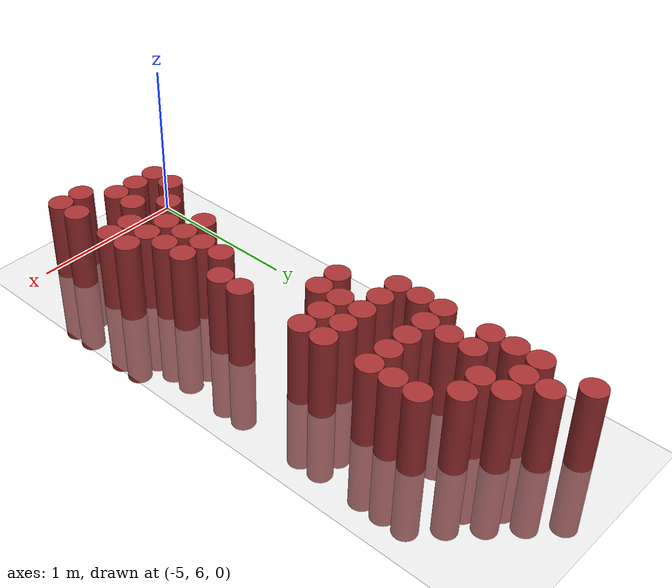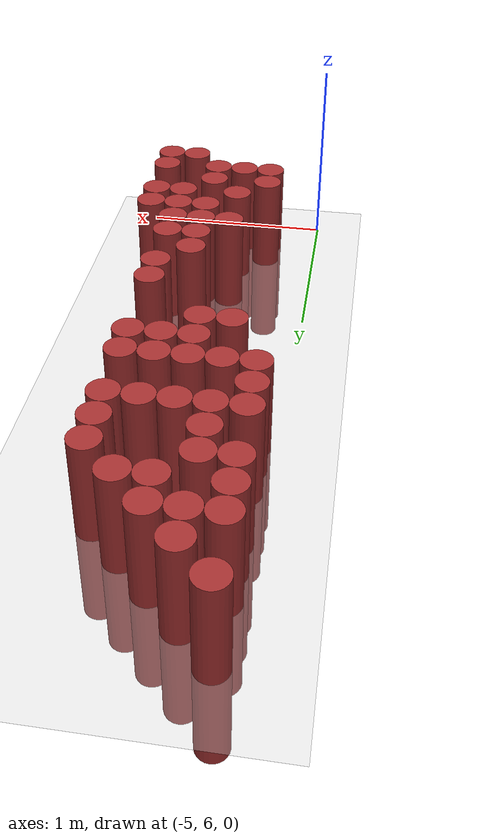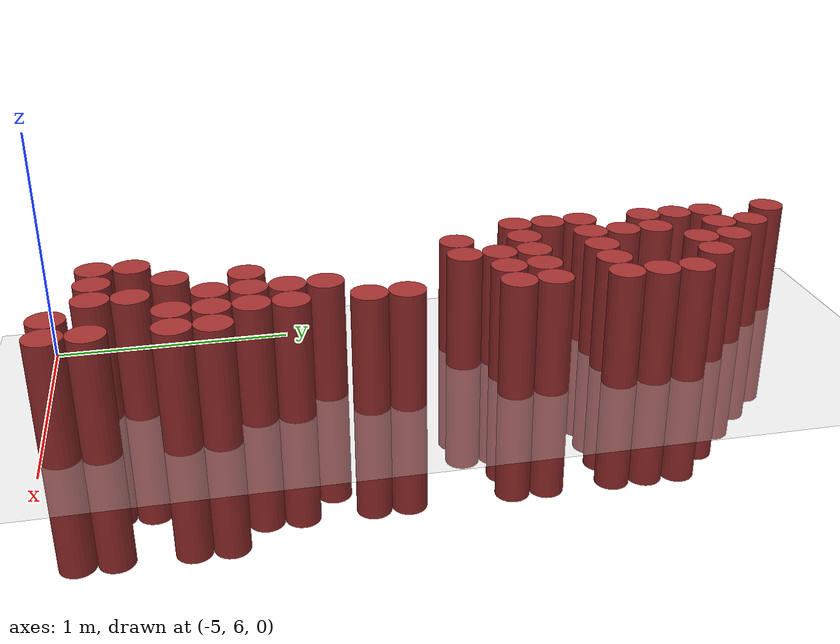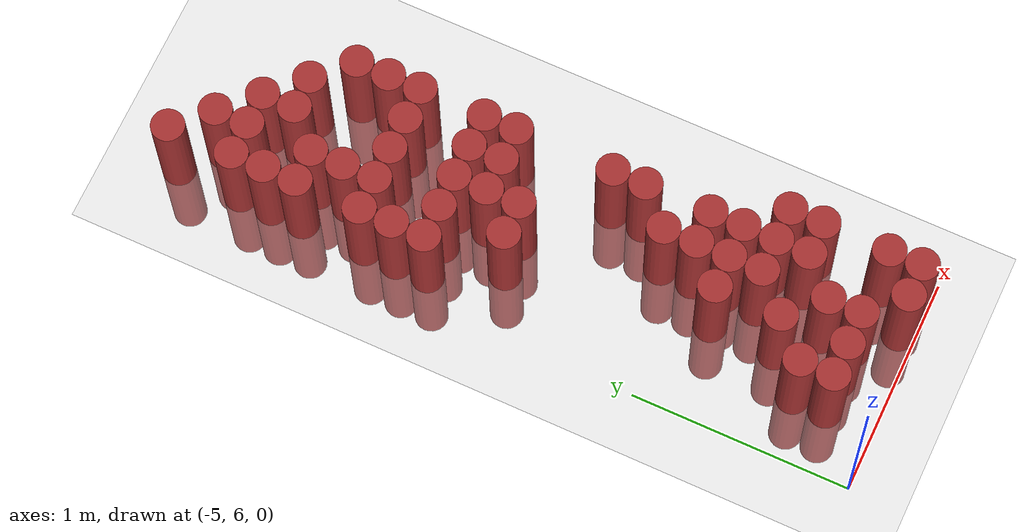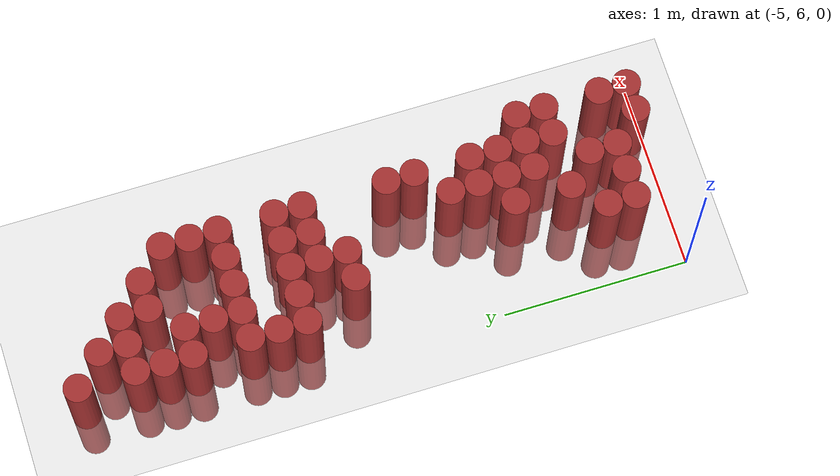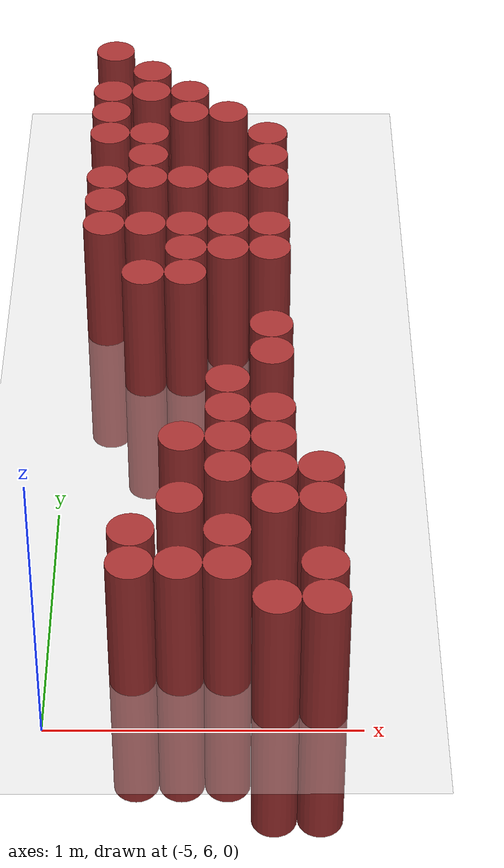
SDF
<sdf version="1.6">
 <world name="default">
  <model name="ground_plane">
   <static>1</static>
   <link name="link">
    <collision name="collision">
     <geometry><plane><normal>0 0 1</normal><size>100 100</size></plane></geometry>
     <surface><friction><ode><mu>100</mu><mu2>50</mu2></ode></friction></surface>
    </collision>
    <visual name="visual">
     <cast_shadows>0</cast_shadows>
     <geometry><plane><normal>0 0 1</normal><size>100 100</size></plane></geometry>
     <material>
      <script><uri>file://media/materials/scripts/gazebo.material</uri><name>Gazebo/Grey</name></script>
     </material>
    </visual>
   </link>
  </model>
  <model name="unit_cylinder_259">
   <static>1</static>
   <pose>-4.875000 8.025000 0.000000 0.000000 0.000000 0.000000</pose>
   <link name="link">
    <inertial>
     <mass>1</mass>
     <inertia><ixx>0.145833</ixx><ixy>0</ixy><ixz>0</ixz><iyy>0.145833</iyy><iyz>0</iyz><izz>0.125</izz></inertia>
    </inertial>
    <collision name="collision">
     <geometry><cylinder><radius>0.075000</radius><length>1</length></cylinder></geometry>
    </collision>
    <visual name="visual">
     <geometry><cylinder><radius>0.075000</radius><length>1</length></cylinder></geometry>
     <material>
      <ambient>0.648000 0.192000 0.192000 1</ambient>
      <diffuse>0.648000 0.192000 0.192000 1</diffuse>
     </material>
     <material>
      <script><name>Gazebo/Grey</name><uri>file://media/materials/scripts/gazebo.material</uri></script>
     </material>
    </visual>
   </link>
  </model>
  <model name="unit_cylinder_260">
   <static>1</static>
   <pose>-4.875000 8.175000 0.000000 0.000000 0.000000 0.000000</pose>
   <link name="link">
    <inertial>
     <mass>1</mass>
     <inertia><ixx>0.145833</ixx><ixy>0</ixy><ixz>0</ixz><iyy>0.145833</iyy><iyz>0</iyz><izz>0.125</izz></inertia>
    </inertial>
    <collision name="collision">
     <geometry><cylinder><radius>0.075000</radius><length>1</length></cylinder></geometry>
    </collision>
    <visual name="visual">
     <geometry><cylinder><radius>0.075000</radius><length>1</length></cylinder></geometry>
     <material>
      <ambient>0.648000 0.192000 0.192000 1</ambient>
      <diffuse>0.648000 0.192000 0.192000 1</diffuse>
     </material>
     <material>
      <script><name>Gazebo/Grey</name><uri>file://media/materials/scripts/gazebo.material</uri></script>
     </material>
    </visual>
   </link>
  </model>
  <model name="unit_cylinder_261">
   <static>1</static>
   <pose>-4.875000 8.325000 0.000000 0.000000 0.000000 0.000000</pose>
   <link name="link">
    <inertial>
     <mass>1</mass>
     <inertia><ixx>0.145833</ixx><ixy>0</ixy><ixz>0</ixz><iyy>0.145833</iyy><iyz>0</iyz><izz>0.125</izz></inertia>
    </inertial>
    <collision name="collision">
     <geometry><cylinder><radius>0.075000</radius><length>1</length></cylinder></geometry>
    </collision>
    <visual name="visual">
     <geometry><cylinder><radius>0.075000</radius><length>1</length></cylinder></geometry>
     <material>
      <ambient>0.648000 0.192000 0.192000 1</ambient>
      <diffuse>0.648000 0.192000 0.192000 1</diffuse>
     </material>
     <material>
      <script><name>Gazebo/Grey</name><uri>file://media/materials/scripts/gazebo.material</uri></script>
     </material>
    </visual>
   </link>
  </model>
  <model name="unit_cylinder_262">
   <static>1</static>
   <pose>-4.875000 8.625000 0.000000 0.000000 0.000000 0.000000</pose>
   <link name="link">
    <inertial>
     <mass>1</mass>
     <inertia><ixx>0.145833</ixx><ixy>0</ixy><ixz>0</ixz><iyy>0.145833</iyy><iyz>0</iyz><izz>0.125</izz></inertia>
    </inertial>
    <collision name="collision">
     <geometry><cylinder><radius>0.075000</radius><length>1</length></cylinder></geometry>
    </collision>
    <visual name="visual">
     <geometry><cylinder><radius>0.075000</radius><length>1</length></cylinder></geometry>
     <material>
      <ambient>0.648000 0.192000 0.192000 1</ambient>
      <diffuse>0.648000 0.192000 0.192000 1</diffuse>
     </material>
     <material>
      <script><name>Gazebo/Grey</name><uri>file://media/materials/scripts/gazebo.material</uri></script>
     </material>
    </visual>
   </link>
  </model>
  <model name="unit_cylinder_263">
   <static>1</static>
   <pose>-4.875000 8.775000 0.000000 0.000000 0.000000 0.000000</pose>
   <link name="link">
    <inertial>
     <mass>1</mass>
     <inertia><ixx>0.145833</ixx><ixy>0</ixy><ixz>0</ixz><iyy>0.145833</iyy><iyz>0</iyz><izz>0.125</izz></inertia>
    </inertial>
    <collision name="collision">
     <geometry><cylinder><radius>0.075000</radius><length>1</length></cylinder></geometry>
    </collision>
    <visual name="visual">
     <geometry><cylinder><radius>0.075000</radius><length>1</length></cylinder></geometry>
     <material>
      <ambient>0.648000 0.192000 0.192000 1</ambient>
      <diffuse>0.648000 0.192000 0.192000 1</diffuse>
     </material>
     <material>
      <script><name>Gazebo/Grey</name><uri>file://media/materials/scripts/gazebo.material</uri></script>
     </material>
    </visual>
   </link>
  </model>
  <model name="unit_cylinder_264">
   <static>1</static>
   <pose>-4.875000 8.925000 0.000000 0.000000 0.000000 0.000000</pose>
   <link name="link">
    <inertial>
     <mass>1</mass>
     <inertia><ixx>0.145833</ixx><ixy>0</ixy><ixz>0</ixz><iyy>0.145833</iyy><iyz>0</iyz><izz>0.125</izz></inertia>
    </inertial>
    <collision name="collision">
     <geometry><cylinder><radius>0.075000</radius><length>1</length></cylinder></geometry>
    </collision>
    <visual name="visual">
     <geometry><cylinder><radius>0.075000</radius><length>1</length></cylinder></geometry>
     <material>
      <ambient>0.648000 0.192000 0.192000 1</ambient>
      <diffuse>0.648000 0.192000 0.192000 1</diffuse>
     </material>
     <material>
      <script><name>Gazebo/Grey</name><uri>file://media/materials/scripts/gazebo.material</uri></script>
     </material>
    </visual>
   </link>
  </model>
  <model name="unit_cylinder_265">
   <static>1</static>
   <pose>-4.875000 9.225000 0.000000 0.000000 0.000000 0.000000</pose>
   <link name="link">
    <inertial>
     <mass>1</mass>
     <inertia><ixx>0.145833</ixx><ixy>0</ixy><ixz>0</ixz><iyy>0.145833</iyy><iyz>0</iyz><izz>0.125</izz></inertia>
    </inertial>
    <collision name="collision">
     <geometry><cylinder><radius>0.075000</radius><length>1</length></cylinder></geometry>
    </collision>
    <visual name="visual">
     <geometry><cylinder><radius>0.075000</radius><length>1</length></cylinder></geometry>
     <material>
      <ambient>0.648000 0.192000 0.192000 1</ambient>
      <diffuse>0.648000 0.192000 0.192000 1</diffuse>
     </material>
     <material>
      <script><name>Gazebo/Grey</name><uri>file://media/materials/scripts/gazebo.material</uri></script>
     </material>
    </visual>
   </link>
  </model>
  <model name="unit_cylinder_268">
   <static>1</static>
   <pose>-4.725000 6.225000 0.000000 0.000000 0.000000 0.000000</pose>
   <link name="link">
    <inertial>
     <mass>1</mass>
     <inertia><ixx>0.145833</ixx><ixy>0</ixy><ixz>0</ixz><iyy>0.145833</iyy><iyz>0</iyz><izz>0.125</izz></inertia>
    </inertial>
    <collision name="collision">
     <geometry><cylinder><radius>0.075000</radius><length>1</length></cylinder></geometry>
    </collision>
    <visual name="visual">
     <geometry><cylinder><radius>0.075000</radius><length>1</length></cylinder></geometry>
     <material>
      <ambient>0.648000 0.192000 0.192000 1</ambient>
      <diffuse>0.648000 0.192000 0.192000 1</diffuse>
     </material>
     <material>
      <script><name>Gazebo/Grey</name><uri>file://media/materials/scripts/gazebo.material</uri></script>
     </material>
    </visual>
   </link>
  </model>
  <model name="unit_cylinder_269">
   <static>1</static>
   <pose>-4.725000 6.375000 0.000000 0.000000 0.000000 0.000000</pose>
   <link name="link">
    <inertial>
     <mass>1</mass>
     <inertia><ixx>0.145833</ixx><ixy>0</ixy><ixz>0</ixz><iyy>0.145833</iyy><iyz>0</iyz><izz>0.125</izz></inertia>
    </inertial>
    <collision name="collision">
     <geometry><cylinder><radius>0.075000</radius><length>1</length></cylinder></geometry>
    </collision>
    <visual name="visual">
     <geometry><cylinder><radius>0.075000</radius><length>1</length></cylinder></geometry>
     <material>
      <ambient>0.648000 0.192000 0.192000 1</ambient>
      <diffuse>0.648000 0.192000 0.192000 1</diffuse>
     </material>
     <material>
      <script><name>Gazebo/Grey</name><uri>file://media/materials/scripts/gazebo.material</uri></script>
     </material>
    </visual>
   </link>
  </model>
  <model name="unit_cylinder_270">
   <static>1</static>
   <pose>-4.725000 7.725000 0.000000 0.000000 0.000000 0.000000</pose>
   <link name="link">
    <inertial>
     <mass>1</mass>
     <inertia><ixx>0.145833</ixx><ixy>0</ixy><ixz>0</ixz><iyy>0.145833</iyy><iyz>0</iyz><izz>0.125</izz></inertia>
    </inertial>
    <collision name="collision">
     <geometry><cylinder><radius>0.075000</radius><length>1</length></cylinder></geometry>
    </collision>
    <visual name="visual">
     <geometry><cylinder><radius>0.075000</radius><length>1</length></cylinder></geometry>
     <material>
      <ambient>0.648000 0.192000 0.192000 1</ambient>
      <diffuse>0.648000 0.192000 0.192000 1</diffuse>
     </material>
     <material>
      <script><name>Gazebo/Grey</name><uri>file://media/materials/scripts/gazebo.material</uri></script>
     </material>
    </visual>
   </link>
  </model>
  <model name="unit_cylinder_271">
   <static>1</static>
   <pose>-4.725000 8.025000 0.000000 0.000000 0.000000 0.000000</pose>
   <link name="link">
    <inertial>
     <mass>1</mass>
     <inertia><ixx>0.145833</ixx><ixy>0</ixy><ixz>0</ixz><iyy>0.145833</iyy><iyz>0</iyz><izz>0.125</izz></inertia>
    </inertial>
    <collision name="collision">
     <geometry><cylinder><radius>0.075000</radius><length>1</length></cylinder></geometry>
    </collision>
    <visual name="visual">
     <geometry><cylinder><radius>0.075000</radius><length>1</length></cylinder></geometry>
     <material>
      <ambient>0.648000 0.192000 0.192000 1</ambient>
      <diffuse>0.648000 0.192000 0.192000 1</diffuse>
     </material>
     <material>
      <script><name>Gazebo/Grey</name><uri>file://media/materials/scripts/gazebo.material</uri></script>
     </material>
    </visual>
   </link>
  </model>
  <model name="unit_cylinder_272">
   <static>1</static>
   <pose>-4.725000 8.325000 0.000000 0.000000 0.000000 0.000000</pose>
   <link name="link">
    <inertial>
     <mass>1</mass>
     <inertia><ixx>0.145833</ixx><ixy>0</ixy><ixz>0</ixz><iyy>0.145833</iyy><iyz>0</iyz><izz>0.125</izz></inertia>
    </inertial>
    <collision name="collision">
     <geometry><cylinder><radius>0.075000</radius><length>1</length></cylinder></geometry>
    </collision>
    <visual name="visual">
     <geometry><cylinder><radius>0.075000</radius><length>1</length></cylinder></geometry>
     <material>
      <ambient>0.648000 0.192000 0.192000 1</ambient>
      <diffuse>0.648000 0.192000 0.192000 1</diffuse>
     </material>
     <material>
      <script><name>Gazebo/Grey</name><uri>file://media/materials/scripts/gazebo.material</uri></script>
     </material>
    </visual>
   </link>
  </model>
  <model name="unit_cylinder_273">
   <static>1</static>
   <pose>-4.725000 8.475000 0.000000 0.000000 0.000000 0.000000</pose>
   <link name="link">
    <inertial>
     <mass>1</mass>
     <inertia><ixx>0.145833</ixx><ixy>0</ixy><ixz>0</ixz><iyy>0.145833</iyy><iyz>0</iyz><izz>0.125</izz></inertia>
    </inertial>
    <collision name="collision">
     <geometry><cylinder><radius>0.075000</radius><length>1</length></cylinder></geometry>
    </collision>
    <visual name="visual">
     <geometry><cylinder><radius>0.075000</radius><length>1</length></cylinder></geometry>
     <material>
      <ambient>0.648000 0.192000 0.192000 1</ambient>
      <diffuse>0.648000 0.192000 0.192000 1</diffuse>
     </material>
     <material>
      <script><name>Gazebo/Grey</name><uri>file://media/materials/scripts/gazebo.material</uri></script>
     </material>
    </visual>
   </link>
  </model>
  <model name="unit_cylinder_274">
   <static>1</static>
   <pose>-4.725000 8.625000 0.000000 0.000000 0.000000 0.000000</pose>
   <link name="link">
    <inertial>
     <mass>1</mass>
     <inertia><ixx>0.145833</ixx><ixy>0</ixy><ixz>0</ixz><iyy>0.145833</iyy><iyz>0</iyz><izz>0.125</izz></inertia>
    </inertial>
    <collision name="collision">
     <geometry><cylinder><radius>0.075000</radius><length>1</length></cylinder></geometry>
    </collision>
    <visual name="visual">
     <geometry><cylinder><radius>0.075000</radius><length>1</length></cylinder></geometry>
     <material>
      <ambient>0.648000 0.192000 0.192000 1</ambient>
      <diffuse>0.648000 0.192000 0.192000 1</diffuse>
     </material>
     <material>
      <script><name>Gazebo/Grey</name><uri>file://media/materials/scripts/gazebo.material</uri></script>
     </material>
    </visual>
   </link>
  </model>
  <model name="unit_cylinder_275">
   <static>1</static>
   <pose>-4.725000 8.925000 0.000000 0.000000 0.000000 0.000000</pose>
   <link name="link">
    <inertial>
     <mass>1</mass>
     <inertia><ixx>0.145833</ixx><ixy>0</ixy><ixz>0</ixz><iyy>0.145833</iyy><iyz>0</iyz><izz>0.125</izz></inertia>
    </inertial>
    <collision name="collision">
     <geometry><cylinder><radius>0.075000</radius><length>1</length></cylinder></geometry>
    </collision>
    <visual name="visual">
     <geometry><cylinder><radius>0.075000</radius><length>1</length></cylinder></geometry>
     <material>
      <ambient>0.648000 0.192000 0.192000 1</ambient>
      <diffuse>0.648000 0.192000 0.192000 1</diffuse>
     </material>
     <material>
      <script><name>Gazebo/Grey</name><uri>file://media/materials/scripts/gazebo.material</uri></script>
     </material>
    </visual>
   </link>
  </model>
  <model name="unit_cylinder_276">
   <static>1</static>
   <pose>-4.725000 9.075000 0.000000 0.000000 0.000000 0.000000</pose>
   <link name="link">
    <inertial>
     <mass>1</mass>
     <inertia><ixx>0.145833</ixx><ixy>0</ixy><ixz>0</ixz><iyy>0.145833</iyy><iyz>0</iyz><izz>0.125</izz></inertia>
    </inertial>
    <collision name="collision">
     <geometry><cylinder><radius>0.075000</radius><length>1</length></cylinder></geometry>
    </collision>
    <visual name="visual">
     <geometry><cylinder><radius>0.075000</radius><length>1</length></cylinder></geometry>
     <material>
      <ambient>0.648000 0.192000 0.192000 1</ambient>
      <diffuse>0.648000 0.192000 0.192000 1</diffuse>
     </material>
     <material>
      <script><name>Gazebo/Grey</name><uri>file://media/materials/scripts/gazebo.material</uri></script>
     </material>
    </visual>
   </link>
  </model>
  <model name="unit_cylinder_281">
   <static>1</static>
   <pose>-4.575000 6.225000 0.000000 0.000000 0.000000 0.000000</pose>
   <link name="link">
    <inertial>
     <mass>1</mass>
     <inertia><ixx>0.145833</ixx><ixy>0</ixy><ixz>0</ixz><iyy>0.145833</iyy><iyz>0</iyz><izz>0.125</izz></inertia>
    </inertial>
    <collision name="collision">
     <geometry><cylinder><radius>0.075000</radius><length>1</length></cylinder></geometry>
    </collision>
    <visual name="visual">
     <geometry><cylinder><radius>0.075000</radius><length>1</length></cylinder></geometry>
     <material>
      <ambient>0.648000 0.192000 0.192000 1</ambient>
      <diffuse>0.648000 0.192000 0.192000 1</diffuse>
     </material>
     <material>
      <script><name>Gazebo/Grey</name><uri>file://media/materials/scripts/gazebo.material</uri></script>
     </material>
    </visual>
   </link>
  </model>
  <model name="unit_cylinder_282">
   <static>1</static>
   <pose>-4.575000 6.525000 0.000000 0.000000 0.000000 0.000000</pose>
   <link name="link">
    <inertial>
     <mass>1</mass>
     <inertia><ixx>0.145833</ixx><ixy>0</ixy><ixz>0</ixz><iyy>0.145833</iyy><iyz>0</iyz><izz>0.125</izz></inertia>
    </inertial>
    <collision name="collision">
     <geometry><cylinder><radius>0.075000</radius><length>1</length></cylinder></geometry>
    </collision>
    <visual name="visual">
     <geometry><cylinder><radius>0.075000</radius><length>1</length></cylinder></geometry>
     <material>
      <ambient>0.648000 0.192000 0.192000 1</ambient>
      <diffuse>0.648000 0.192000 0.192000 1</diffuse>
     </material>
     <material>
      <script><name>Gazebo/Grey</name><uri>file://media/materials/scripts/gazebo.material</uri></script>
     </material>
    </visual>
   </link>
  </model>
  <model name="unit_cylinder_283">
   <static>1</static>
   <pose>-4.575000 6.825000 0.000000 0.000000 0.000000 0.000000</pose>
   <link name="link">
    <inertial>
     <mass>1</mass>
     <inertia><ixx>0.145833</ixx><ixy>0</ixy><ixz>0</ixz><iyy>0.145833</iyy><iyz>0</iyz><izz>0.125</izz></inertia>
    </inertial>
    <collision name="collision">
     <geometry><cylinder><radius>0.075000</radius><length>1</length></cylinder></geometry>
    </collision>
    <visual name="visual">
     <geometry><cylinder><radius>0.075000</radius><length>1</length></cylinder></geometry>
     <material>
      <ambient>0.648000 0.192000 0.192000 1</ambient>
      <diffuse>0.648000 0.192000 0.192000 1</diffuse>
     </material>
     <material>
      <script><name>Gazebo/Grey</name><uri>file://media/materials/scripts/gazebo.material</uri></script>
     </material>
    </visual>
   </link>
  </model>
  <model name="unit_cylinder_284">
   <static>1</static>
   <pose>-4.575000 7.725000 0.000000 0.000000 0.000000 0.000000</pose>
   <link name="link">
    <inertial>
     <mass>1</mass>
     <inertia><ixx>0.145833</ixx><ixy>0</ixy><ixz>0</ixz><iyy>0.145833</iyy><iyz>0</iyz><izz>0.125</izz></inertia>
    </inertial>
    <collision name="collision">
     <geometry><cylinder><radius>0.075000</radius><length>1</length></cylinder></geometry>
    </collision>
    <visual name="visual">
     <geometry><cylinder><radius>0.075000</radius><length>1</length></cylinder></geometry>
     <material>
      <ambient>0.648000 0.192000 0.192000 1</ambient>
      <diffuse>0.648000 0.192000 0.192000 1</diffuse>
     </material>
     <material>
      <script><name>Gazebo/Grey</name><uri>file://media/materials/scripts/gazebo.material</uri></script>
     </material>
    </visual>
   </link>
  </model>
  <model name="unit_cylinder_285">
   <static>1</static>
   <pose>-4.575000 7.875000 0.000000 0.000000 0.000000 0.000000</pose>
   <link name="link">
    <inertial>
     <mass>1</mass>
     <inertia><ixx>0.145833</ixx><ixy>0</ixy><ixz>0</ixz><iyy>0.145833</iyy><iyz>0</iyz><izz>0.125</izz></inertia>
    </inertial>
    <collision name="collision">
     <geometry><cylinder><radius>0.075000</radius><length>1</length></cylinder></geometry>
    </collision>
    <visual name="visual">
     <geometry><cylinder><radius>0.075000</radius><length>1</length></cylinder></geometry>
     <material>
      <ambient>0.648000 0.192000 0.192000 1</ambient>
      <diffuse>0.648000 0.192000 0.192000 1</diffuse>
     </material>
     <material>
      <script><name>Gazebo/Grey</name><uri>file://media/materials/scripts/gazebo.material</uri></script>
     </material>
    </visual>
   </link>
  </model>
  <model name="unit_cylinder_286">
   <static>1</static>
   <pose>-4.575000 8.025000 0.000000 0.000000 0.000000 0.000000</pose>
   <link name="link">
    <inertial>
     <mass>1</mass>
     <inertia><ixx>0.145833</ixx><ixy>0</ixy><ixz>0</ixz><iyy>0.145833</iyy><iyz>0</iyz><izz>0.125</izz></inertia>
    </inertial>
    <collision name="collision">
     <geometry><cylinder><radius>0.075000</radius><length>1</length></cylinder></geometry>
    </collision>
    <visual name="visual">
     <geometry><cylinder><radius>0.075000</radius><length>1</length></cylinder></geometry>
     <material>
      <ambient>0.648000 0.192000 0.192000 1</ambient>
      <diffuse>0.648000 0.192000 0.192000 1</diffuse>
     </material>
     <material>
      <script><name>Gazebo/Grey</name><uri>file://media/materials/scripts/gazebo.material</uri></script>
     </material>
    </visual>
   </link>
  </model>
  <model name="unit_cylinder_287">
   <static>1</static>
   <pose>-4.575000 8.325000 0.000000 0.000000 0.000000 0.000000</pose>
   <link name="link">
    <inertial>
     <mass>1</mass>
     <inertia><ixx>0.145833</ixx><ixy>0</ixy><ixz>0</ixz><iyy>0.145833</iyy><iyz>0</iyz><izz>0.125</izz></inertia>
    </inertial>
    <collision name="collision">
     <geometry><cylinder><radius>0.075000</radius><length>1</length></cylinder></geometry>
    </collision>
    <visual name="visual">
     <geometry><cylinder><radius>0.075000</radius><length>1</length></cylinder></geometry>
     <material>
      <ambient>0.648000 0.192000 0.192000 1</ambient>
      <diffuse>0.648000 0.192000 0.192000 1</diffuse>
     </material>
     <material>
      <script><name>Gazebo/Grey</name><uri>file://media/materials/scripts/gazebo.material</uri></script>
     </material>
    </visual>
   </link>
  </model>
  <model name="unit_cylinder_288">
   <static>1</static>
   <pose>-4.575000 8.775000 0.000000 0.000000 0.000000 0.000000</pose>
   <link name="link">
    <inertial>
     <mass>1</mass>
     <inertia><ixx>0.145833</ixx><ixy>0</ixy><ixz>0</ixz><iyy>0.145833</iyy><iyz>0</iyz><izz>0.125</izz></inertia>
    </inertial>
    <collision name="collision">
     <geometry><cylinder><radius>0.075000</radius><length>1</length></cylinder></geometry>
    </collision>
    <visual name="visual">
     <geometry><cylinder><radius>0.075000</radius><length>1</length></cylinder></geometry>
     <material>
      <ambient>0.648000 0.192000 0.192000 1</ambient>
      <diffuse>0.648000 0.192000 0.192000 1</diffuse>
     </material>
     <material>
      <script><name>Gazebo/Grey</name><uri>file://media/materials/scripts/gazebo.material</uri></script>
     </material>
    </visual>
   </link>
  </model>
  <model name="unit_cylinder_289">
   <static>1</static>
   <pose>-4.575000 8.925000 0.000000 0.000000 0.000000 0.000000</pose>
   <link name="link">
    <inertial>
     <mass>1</mass>
     <inertia><ixx>0.145833</ixx><ixy>0</ixy><ixz>0</ixz><iyy>0.145833</iyy><iyz>0</iyz><izz>0.125</izz></inertia>
    </inertial>
    <collision name="collision">
     <geometry><cylinder><radius>0.075000</radius><length>1</length></cylinder></geometry>
    </collision>
    <visual name="visual">
     <geometry><cylinder><radius>0.075000</radius><length>1</length></cylinder></geometry>
     <material>
      <ambient>0.648000 0.192000 0.192000 1</ambient>
      <diffuse>0.648000 0.192000 0.192000 1</diffuse>
     </material>
     <material>
      <script><name>Gazebo/Grey</name><uri>file://media/materials/scripts/gazebo.material</uri></script>
     </material>
    </visual>
   </link>
  </model>
  <model name="unit_cylinder_295">
   <static>1</static>
   <pose>-4.425000 6.225000 0.000000 0.000000 0.000000 0.000000</pose>
   <link name="link">
    <inertial>
     <mass>1</mass>
     <inertia><ixx>0.145833</ixx><ixy>0</ixy><ixz>0</ixz><iyy>0.145833</iyy><iyz>0</iyz><izz>0.125</izz></inertia>
    </inertial>
    <collision name="collision">
     <geometry><cylinder><radius>0.075000</radius><length>1</length></cylinder></geometry>
    </collision>
    <visual name="visual">
     <geometry><cylinder><radius>0.075000</radius><length>1</length></cylinder></geometry>
     <material>
      <ambient>0.648000 0.192000 0.192000 1</ambient>
      <diffuse>0.648000 0.192000 0.192000 1</diffuse>
     </material>
     <material>
      <script><name>Gazebo/Grey</name><uri>file://media/materials/scripts/gazebo.material</uri></script>
     </material>
    </visual>
   </link>
  </model>
  <model name="unit_cylinder_296">
   <static>1</static>
   <pose>-4.425000 6.375000 0.000000 0.000000 0.000000 0.000000</pose>
   <link name="link">
    <inertial>
     <mass>1</mass>
     <inertia><ixx>0.145833</ixx><ixy>0</ixy><ixz>0</ixz><iyy>0.145833</iyy><iyz>0</iyz><izz>0.125</izz></inertia>
    </inertial>
    <collision name="collision">
     <geometry><cylinder><radius>0.075000</radius><length>1</length></cylinder></geometry>
    </collision>
    <visual name="visual">
     <geometry><cylinder><radius>0.075000</radius><length>1</length></cylinder></geometry>
     <material>
      <ambient>0.648000 0.192000 0.192000 1</ambient>
      <diffuse>0.648000 0.192000 0.192000 1</diffuse>
     </material>
     <material>
      <script><name>Gazebo/Grey</name><uri>file://media/materials/scripts/gazebo.material</uri></script>
     </material>
    </visual>
   </link>
  </model>
  <model name="unit_cylinder_297">
   <static>1</static>
   <pose>-4.425000 6.675000 0.000000 0.000000 0.000000 0.000000</pose>
   <link name="link">
    <inertial>
     <mass>1</mass>
     <inertia><ixx>0.145833</ixx><ixy>0</ixy><ixz>0</ixz><iyy>0.145833</iyy><iyz>0</iyz><izz>0.125</izz></inertia>
    </inertial>
    <collision name="collision">
     <geometry><cylinder><radius>0.075000</radius><length>1</length></cylinder></geometry>
    </collision>
    <visual name="visual">
     <geometry><cylinder><radius>0.075000</radius><length>1</length></cylinder></geometry>
     <material>
      <ambient>0.648000 0.192000 0.192000 1</ambient>
      <diffuse>0.648000 0.192000 0.192000 1</diffuse>
     </material>
     <material>
      <script><name>Gazebo/Grey</name><uri>file://media/materials/scripts/gazebo.material</uri></script>
     </material>
    </visual>
   </link>
  </model>
  <model name="unit_cylinder_298">
   <static>1</static>
   <pose>-4.425000 6.825000 0.000000 0.000000 0.000000 0.000000</pose>
   <link name="link">
    <inertial>
     <mass>1</mass>
     <inertia><ixx>0.145833</ixx><ixy>0</ixy><ixz>0</ixz><iyy>0.145833</iyy><iyz>0</iyz><izz>0.125</izz></inertia>
    </inertial>
    <collision name="collision">
     <geometry><cylinder><radius>0.075000</radius><length>1</length></cylinder></geometry>
    </collision>
    <visual name="visual">
     <geometry><cylinder><radius>0.075000</radius><length>1</length></cylinder></geometry>
     <material>
      <ambient>0.648000 0.192000 0.192000 1</ambient>
      <diffuse>0.648000 0.192000 0.192000 1</diffuse>
     </material>
     <material>
      <script><name>Gazebo/Grey</name><uri>file://media/materials/scripts/gazebo.material</uri></script>
     </material>
    </visual>
   </link>
  </model>
  <model name="unit_cylinder_299">
   <static>1</static>
   <pose>-4.425000 6.975000 0.000000 0.000000 0.000000 0.000000</pose>
   <link name="link">
    <inertial>
     <mass>1</mass>
     <inertia><ixx>0.145833</ixx><ixy>0</ixy><ixz>0</ixz><iyy>0.145833</iyy><iyz>0</iyz><izz>0.125</izz></inertia>
    </inertial>
    <collision name="collision">
     <geometry><cylinder><radius>0.075000</radius><length>1</length></cylinder></geometry>
    </collision>
    <visual name="visual">
     <geometry><cylinder><radius>0.075000</radius><length>1</length></cylinder></geometry>
     <material>
      <ambient>0.648000 0.192000 0.192000 1</ambient>
      <diffuse>0.648000 0.192000 0.192000 1</diffuse>
     </material>
     <material>
      <script><name>Gazebo/Grey</name><uri>file://media/materials/scripts/gazebo.material</uri></script>
     </material>
    </visual>
   </link>
  </model>
  <model name="unit_cylinder_300">
   <static>1</static>
   <pose>-4.425000 7.125000 0.000000 0.000000 0.000000 0.000000</pose>
   <link name="link">
    <inertial>
     <mass>1</mass>
     <inertia><ixx>0.145833</ixx><ixy>0</ixy><ixz>0</ixz><iyy>0.145833</iyy><iyz>0</iyz><izz>0.125</izz></inertia>
    </inertial>
    <collision name="collision">
     <geometry><cylinder><radius>0.075000</radius><length>1</length></cylinder></geometry>
    </collision>
    <visual name="visual">
     <geometry><cylinder><radius>0.075000</radius><length>1</length></cylinder></geometry>
     <material>
      <ambient>0.648000 0.192000 0.192000 1</ambient>
      <diffuse>0.648000 0.192000 0.192000 1</diffuse>
     </material>
     <material>
      <script><name>Gazebo/Grey</name><uri>file://media/materials/scripts/gazebo.material</uri></script>
     </material>
    </visual>
   </link>
  </model>
  <model name="unit_cylinder_301">
   <static>1</static>
   <pose>-4.425000 7.875000 0.000000 0.000000 0.000000 0.000000</pose>
   <link name="link">
    <inertial>
     <mass>1</mass>
     <inertia><ixx>0.145833</ixx><ixy>0</ixy><ixz>0</ixz><iyy>0.145833</iyy><iyz>0</iyz><izz>0.125</izz></inertia>
    </inertial>
    <collision name="collision">
     <geometry><cylinder><radius>0.075000</radius><length>1</length></cylinder></geometry>
    </collision>
    <visual name="visual">
     <geometry><cylinder><radius>0.075000</radius><length>1</length></cylinder></geometry>
     <material>
      <ambient>0.648000 0.192000 0.192000 1</ambient>
      <diffuse>0.648000 0.192000 0.192000 1</diffuse>
     </material>
     <material>
      <script><name>Gazebo/Grey</name><uri>file://media/materials/scripts/gazebo.material</uri></script>
     </material>
    </visual>
   </link>
  </model>
  <model name="unit_cylinder_302">
   <static>1</static>
   <pose>-4.425000 8.025000 0.000000 0.000000 0.000000 0.000000</pose>
   <link name="link">
    <inertial>
     <mass>1</mass>
     <inertia><ixx>0.145833</ixx><ixy>0</ixy><ixz>0</ixz><iyy>0.145833</iyy><iyz>0</iyz><izz>0.125</izz></inertia>
    </inertial>
    <collision name="collision">
     <geometry><cylinder><radius>0.075000</radius><length>1</length></cylinder></geometry>
    </collision>
    <visual name="visual">
     <geometry><cylinder><radius>0.075000</radius><length>1</length></cylinder></geometry>
     <material>
      <ambient>0.648000 0.192000 0.192000 1</ambient>
      <diffuse>0.648000 0.192000 0.192000 1</diffuse>
     </material>
     <material>
      <script><name>Gazebo/Grey</name><uri>file://media/materials/scripts/gazebo.material</uri></script>
     </material>
    </visual>
   </link>
  </model>
  <model name="unit_cylinder_303">
   <static>1</static>
   <pose>-4.425000 8.325000 0.000000 0.000000 0.000000 0.000000</pose>
   <link name="link">
    <inertial>
     <mass>1</mass>
     <inertia><ixx>0.145833</ixx><ixy>0</ixy><ixz>0</ixz><iyy>0.145833</iyy><iyz>0</iyz><izz>0.125</izz></inertia>
    </inertial>
    <collision name="collision">
     <geometry><cylinder><radius>0.075000</radius><length>1</length></cylinder></geometry>
    </collision>
    <visual name="visual">
     <geometry><cylinder><radius>0.075000</radius><length>1</length></cylinder></geometry>
     <material>
      <ambient>0.648000 0.192000 0.192000 1</ambient>
      <diffuse>0.648000 0.192000 0.192000 1</diffuse>
     </material>
     <material>
      <script><name>Gazebo/Grey</name><uri>file://media/materials/scripts/gazebo.material</uri></script>
     </material>
    </visual>
   </link>
  </model>
  <model name="unit_cylinder_304">
   <static>1</static>
   <pose>-4.425000 8.775000 0.000000 0.000000 0.000000 0.000000</pose>
   <link name="link">
    <inertial>
     <mass>1</mass>
     <inertia><ixx>0.145833</ixx><ixy>0</ixy><ixz>0</ixz><iyy>0.145833</iyy><iyz>0</iyz><izz>0.125</izz></inertia>
    </inertial>
    <collision name="collision">
     <geometry><cylinder><radius>0.075000</radius><length>1</length></cylinder></geometry>
    </collision>
    <visual name="visual">
     <geometry><cylinder><radius>0.075000</radius><length>1</length></cylinder></geometry>
     <material>
      <ambient>0.648000 0.192000 0.192000 1</ambient>
      <diffuse>0.648000 0.192000 0.192000 1</diffuse>
     </material>
     <material>
      <script><name>Gazebo/Grey</name><uri>file://media/materials/scripts/gazebo.material</uri></script>
     </material>
    </visual>
   </link>
  </model>
  <model name="unit_cylinder_310">
   <static>1</static>
   <pose>-4.275000 6.075000 0.000000 0.000000 0.000000 0.000000</pose>
   <link name="link">
    <inertial>
     <mass>1</mass>
     <inertia><ixx>0.145833</ixx><ixy>0</ixy><ixz>0</ixz><iyy>0.145833</iyy><iyz>0</iyz><izz>0.125</izz></inertia>
    </inertial>
    <collision name="collision">
     <geometry><cylinder><radius>0.075000</radius><length>1</length></cylinder></geometry>
    </collision>
    <visual name="visual">
     <geometry><cylinder><radius>0.075000</radius><length>1</length></cylinder></geometry>
     <material>
      <ambient>0.648000 0.192000 0.192000 1</ambient>
      <diffuse>0.648000 0.192000 0.192000 1</diffuse>
     </material>
     <material>
      <script><name>Gazebo/Grey</name><uri>file://media/materials/scripts/gazebo.material</uri></script>
     </material>
    </visual>
   </link>
  </model>
  <model name="unit_cylinder_311">
   <static>1</static>
   <pose>-4.275000 6.525000 0.000000 0.000000 0.000000 0.000000</pose>
   <link name="link">
    <inertial>
     <mass>1</mass>
     <inertia><ixx>0.145833</ixx><ixy>0</ixy><ixz>0</ixz><iyy>0.145833</iyy><iyz>0</iyz><izz>0.125</izz></inertia>
    </inertial>
    <collision name="collision">
     <geometry><cylinder><radius>0.075000</radius><length>1</length></cylinder></geometry>
    </collision>
    <visual name="visual">
     <geometry><cylinder><radius>0.075000</radius><length>1</length></cylinder></geometry>
     <material>
      <ambient>0.648000 0.192000 0.192000 1</ambient>
      <diffuse>0.648000 0.192000 0.192000 1</diffuse>
     </material>
     <material>
      <script><name>Gazebo/Grey</name><uri>file://media/materials/scripts/gazebo.material</uri></script>
     </material>
    </visual>
   </link>
  </model>
  <model name="unit_cylinder_312">
   <static>1</static>
   <pose>-4.275000 6.675000 0.000000 0.000000 0.000000 0.000000</pose>
   <link name="link">
    <inertial>
     <mass>1</mass>
     <inertia><ixx>0.145833</ixx><ixy>0</ixy><ixz>0</ixz><iyy>0.145833</iyy><iyz>0</iyz><izz>0.125</izz></inertia>
    </inertial>
    <collision name="collision">
     <geometry><cylinder><radius>0.075000</radius><length>1</length></cylinder></geometry>
    </collision>
    <visual name="visual">
     <geometry><cylinder><radius>0.075000</radius><length>1</length></cylinder></geometry>
     <material>
      <ambient>0.648000 0.192000 0.192000 1</ambient>
      <diffuse>0.648000 0.192000 0.192000 1</diffuse>
     </material>
     <material>
      <script><name>Gazebo/Grey</name><uri>file://media/materials/scripts/gazebo.material</uri></script>
     </material>
    </visual>
   </link>
  </model>
  <model name="unit_cylinder_313">
   <static>1</static>
   <pose>-4.275000 6.825000 0.000000 0.000000 0.000000 0.000000</pose>
   <link name="link">
    <inertial>
     <mass>1</mass>
     <inertia><ixx>0.145833</ixx><ixy>0</ixy><ixz>0</ixz><iyy>0.145833</iyy><iyz>0</iyz><izz>0.125</izz></inertia>
    </inertial>
    <collision name="collision">
     <geometry><cylinder><radius>0.075000</radius><length>1</length></cylinder></geometry>
    </collision>
    <visual name="visual">
     <geometry><cylinder><radius>0.075000</radius><length>1</length></cylinder></geometry>
     <material>
      <ambient>0.648000 0.192000 0.192000 1</ambient>
      <diffuse>0.648000 0.192000 0.192000 1</diffuse>
     </material>
     <material>
      <script><name>Gazebo/Grey</name><uri>file://media/materials/scripts/gazebo.material</uri></script>
     </material>
    </visual>
   </link>
  </model>
  <model name="unit_cylinder_314">
   <static>1</static>
   <pose>-4.275000 6.975000 0.000000 0.000000 0.000000 0.000000</pose>
   <link name="link">
    <inertial>
     <mass>1</mass>
     <inertia><ixx>0.145833</ixx><ixy>0</ixy><ixz>0</ixz><iyy>0.145833</iyy><iyz>0</iyz><izz>0.125</izz></inertia>
    </inertial>
    <collision name="collision">
     <geometry><cylinder><radius>0.075000</radius><length>1</length></cylinder></geometry>
    </collision>
    <visual name="visual">
     <geometry><cylinder><radius>0.075000</radius><length>1</length></cylinder></geometry>
     <material>
      <ambient>0.648000 0.192000 0.192000 1</ambient>
      <diffuse>0.648000 0.192000 0.192000 1</diffuse>
     </material>
     <material>
      <script><name>Gazebo/Grey</name><uri>file://media/materials/scripts/gazebo.material</uri></script>
     </material>
    </visual>
   </link>
  </model>
  <model name="unit_cylinder_315">
   <static>1</static>
   <pose>-4.275000 7.275000 0.000000 0.000000 0.000000 0.000000</pose>
   <link name="link">
    <inertial>
     <mass>1</mass>
     <inertia><ixx>0.145833</ixx><ixy>0</ixy><ixz>0</ixz><iyy>0.145833</iyy><iyz>0</iyz><izz>0.125</izz></inertia>
    </inertial>
    <collision name="collision">
     <geometry><cylinder><radius>0.075000</radius><length>1</length></cylinder></geometry>
    </collision>
    <visual name="visual">
     <geometry><cylinder><radius>0.075000</radius><length>1</length></cylinder></geometry>
     <material>
      <ambient>0.648000 0.192000 0.192000 1</ambient>
      <diffuse>0.648000 0.192000 0.192000 1</diffuse>
     </material>
     <material>
      <script><name>Gazebo/Grey</name><uri>file://media/materials/scripts/gazebo.material</uri></script>
     </material>
    </visual>
   </link>
  </model>
  <model name="unit_cylinder_316">
   <static>1</static>
   <pose>-4.275000 7.425000 0.000000 0.000000 0.000000 0.000000</pose>
   <link name="link">
    <inertial>
     <mass>1</mass>
     <inertia><ixx>0.145833</ixx><ixy>0</ixy><ixz>0</ixz><iyy>0.145833</iyy><iyz>0</iyz><izz>0.125</izz></inertia>
    </inertial>
    <collision name="collision">
     <geometry><cylinder><radius>0.075000</radius><length>1</length></cylinder></geometry>
    </collision>
    <visual name="visual">
     <geometry><cylinder><radius>0.075000</radius><length>1</length></cylinder></geometry>
     <material>
      <ambient>0.648000 0.192000 0.192000 1</ambient>
      <diffuse>0.648000 0.192000 0.192000 1</diffuse>
     </material>
     <material>
      <script><name>Gazebo/Grey</name><uri>file://media/materials/scripts/gazebo.material</uri></script>
     </material>
    </visual>
   </link>
  </model>
  <model name="unit_cylinder_317">
   <static>1</static>
   <pose>-4.275000 7.875000 0.000000 0.000000 0.000000 0.000000</pose>
   <link name="link">
    <inertial>
     <mass>1</mass>
     <inertia><ixx>0.145833</ixx><ixy>0</ixy><ixz>0</ixz><iyy>0.145833</iyy><iyz>0</iyz><izz>0.125</izz></inertia>
    </inertial>
    <collision name="collision">
     <geometry><cylinder><radius>0.075000</radius><length>1</length></cylinder></geometry>
    </collision>
    <visual name="visual">
     <geometry><cylinder><radius>0.075000</radius><length>1</length></cylinder></geometry>
     <material>
      <ambient>0.648000 0.192000 0.192000 1</ambient>
      <diffuse>0.648000 0.192000 0.192000 1</diffuse>
     </material>
     <material>
      <script><name>Gazebo/Grey</name><uri>file://media/materials/scripts/gazebo.material</uri></script>
     </material>
    </visual>
   </link>
  </model>
  <model name="unit_cylinder_318">
   <static>1</static>
   <pose>-4.275000 8.025000 0.000000 0.000000 0.000000 0.000000</pose>
   <link name="link">
    <inertial>
     <mass>1</mass>
     <inertia><ixx>0.145833</ixx><ixy>0</ixy><ixz>0</ixz><iyy>0.145833</iyy><iyz>0</iyz><izz>0.125</izz></inertia>
    </inertial>
    <collision name="collision">
     <geometry><cylinder><radius>0.075000</radius><length>1</length></cylinder></geometry>
    </collision>
    <visual name="visual">
     <geometry><cylinder><radius>0.075000</radius><length>1</length></cylinder></geometry>
     <material>
      <ambient>0.648000 0.192000 0.192000 1</ambient>
      <diffuse>0.648000 0.192000 0.192000 1</diffuse>
     </material>
     <material>
      <script><name>Gazebo/Grey</name><uri>file://media/materials/scripts/gazebo.material</uri></script>
     </material>
    </visual>
   </link>
  </model>
  <model name="unit_cylinder_319">
   <static>1</static>
   <pose>-4.275000 8.325000 0.000000 0.000000 0.000000 0.000000</pose>
   <link name="link">
    <inertial>
     <mass>1</mass>
     <inertia><ixx>0.145833</ixx><ixy>0</ixy><ixz>0</ixz><iyy>0.145833</iyy><iyz>0</iyz><izz>0.125</izz></inertia>
    </inertial>
    <collision name="collision">
     <geometry><cylinder><radius>0.075000</radius><length>1</length></cylinder></geometry>
    </collision>
    <visual name="visual">
     <geometry><cylinder><radius>0.075000</radius><length>1</length></cylinder></geometry>
     <material>
      <ambient>0.648000 0.192000 0.192000 1</ambient>
      <diffuse>0.648000 0.192000 0.192000 1</diffuse>
     </material>
     <material>
      <script><name>Gazebo/Grey</name><uri>file://media/materials/scripts/gazebo.material</uri></script>
     </material>
    </visual>
   </link>
  </model>
  <model name="unit_cylinder_320">
   <static>1</static>
   <pose>-4.275000 8.475000 0.000000 0.000000 0.000000 0.000000</pose>
   <link name="link">
    <inertial>
     <mass>1</mass>
     <inertia><ixx>0.145833</ixx><ixy>0</ixy><ixz>0</ixz><iyy>0.145833</iyy><iyz>0</iyz><izz>0.125</izz></inertia>
    </inertial>
    <collision name="collision">
     <geometry><cylinder><radius>0.075000</radius><length>1</length></cylinder></geometry>
    </collision>
    <visual name="visual">
     <geometry><cylinder><radius>0.075000</radius><length>1</length></cylinder></geometry>
     <material>
      <ambient>0.648000 0.192000 0.192000 1</ambient>
      <diffuse>0.648000 0.192000 0.192000 1</diffuse>
     </material>
     <material>
      <script><name>Gazebo/Grey</name><uri>file://media/materials/scripts/gazebo.material</uri></script>
     </material>
    </visual>
   </link>
  </model>
  <model name="unit_cylinder_321">
   <static>1</static>
   <pose>-4.275000 8.625000 0.000000 0.000000 0.000000 0.000000</pose>
   <link name="link">
    <inertial>
     <mass>1</mass>
     <inertia><ixx>0.145833</ixx><ixy>0</ixy><ixz>0</ixz><iyy>0.145833</iyy><iyz>0</iyz><izz>0.125</izz></inertia>
    </inertial>
    <collision name="collision">
     <geometry><cylinder><radius>0.075000</radius><length>1</length></cylinder></geometry>
    </collision>
    <visual name="visual">
     <geometry><cylinder><radius>0.075000</radius><length>1</length></cylinder></geometry>
     <material>
      <ambient>0.648000 0.192000 0.192000 1</ambient>
      <diffuse>0.648000 0.192000 0.192000 1</diffuse>
     </material>
     <material>
      <script><name>Gazebo/Grey</name><uri>file://media/materials/scripts/gazebo.material</uri></script>
     </material>
    </visual>
   </link>
  </model>
  <model name="unit_cylinder_324">
   <static>1</static>
   <pose>-4.125000 6.075000 0.000000 0.000000 0.000000 0.000000</pose>
   <link name="link">
    <inertial>
     <mass>1</mass>
     <inertia><ixx>0.145833</ixx><ixy>0</ixy><ixz>0</ixz><iyy>0.145833</iyy><iyz>0</iyz><izz>0.125</izz></inertia>
    </inertial>
    <collision name="collision">
     <geometry><cylinder><radius>0.075000</radius><length>1</length></cylinder></geometry>
    </collision>
    <visual name="visual">
     <geometry><cylinder><radius>0.075000</radius><length>1</length></cylinder></geometry>
     <material>
      <ambient>0.648000 0.192000 0.192000 1</ambient>
      <diffuse>0.648000 0.192000 0.192000 1</diffuse>
     </material>
     <material>
      <script><name>Gazebo/Grey</name><uri>file://media/materials/scripts/gazebo.material</uri></script>
     </material>
    </visual>
   </link>
  </model>
  <model name="unit_cylinder_325">
   <static>1</static>
   <pose>-4.125000 6.225000 0.000000 0.000000 0.000000 0.000000</pose>
   <link name="link">
    <inertial>
     <mass>1</mass>
     <inertia><ixx>0.145833</ixx><ixy>0</ixy><ixz>0</ixz><iyy>0.145833</iyy><iyz>0</iyz><izz>0.125</izz></inertia>
    </inertial>
    <collision name="collision">
     <geometry><cylinder><radius>0.075000</radius><length>1</length></cylinder></geometry>
    </collision>
    <visual name="visual">
     <geometry><cylinder><radius>0.075000</radius><length>1</length></cylinder></geometry>
     <material>
      <ambient>0.648000 0.192000 0.192000 1</ambient>
      <diffuse>0.648000 0.192000 0.192000 1</diffuse>
     </material>
     <material>
      <script><name>Gazebo/Grey</name><uri>file://media/materials/scripts/gazebo.material</uri></script>
     </material>
    </visual>
   </link>
  </model>
  <model name="unit_cylinder_326">
   <static>1</static>
   <pose>-4.125000 6.525000 0.000000 0.000000 0.000000 0.000000</pose>
   <link name="link">
    <inertial>
     <mass>1</mass>
     <inertia><ixx>0.145833</ixx><ixy>0</ixy><ixz>0</ixz><iyy>0.145833</iyy><iyz>0</iyz><izz>0.125</izz></inertia>
    </inertial>
    <collision name="collision">
     <geometry><cylinder><radius>0.075000</radius><length>1</length></cylinder></geometry>
    </collision>
    <visual name="visual">
     <geometry><cylinder><radius>0.075000</radius><length>1</length></cylinder></geometry>
     <material>
      <ambient>0.648000 0.192000 0.192000 1</ambient>
      <diffuse>0.648000 0.192000 0.192000 1</diffuse>
     </material>
     <material>
      <script><name>Gazebo/Grey</name><uri>file://media/materials/scripts/gazebo.material</uri></script>
     </material>
    </visual>
   </link>
  </model>
  <model name="unit_cylinder_327">
   <static>1</static>
   <pose>-4.125000 6.675000 0.000000 0.000000 0.000000 0.000000</pose>
   <link name="link">
    <inertial>
     <mass>1</mass>
     <inertia><ixx>0.145833</ixx><ixy>0</ixy><ixz>0</ixz><iyy>0.145833</iyy><iyz>0</iyz><izz>0.125</izz></inertia>
    </inertial>
    <collision name="collision">
     <geometry><cylinder><radius>0.075000</radius><length>1</length></cylinder></geometry>
    </collision>
    <visual name="visual">
     <geometry><cylinder><radius>0.075000</radius><length>1</length></cylinder></geometry>
     <material>
      <ambient>0.648000 0.192000 0.192000 1</ambient>
      <diffuse>0.648000 0.192000 0.192000 1</diffuse>
     </material>
     <material>
      <script><name>Gazebo/Grey</name><uri>file://media/materials/scripts/gazebo.material</uri></script>
     </material>
    </visual>
   </link>
  </model>
 </world>
</sdf>
